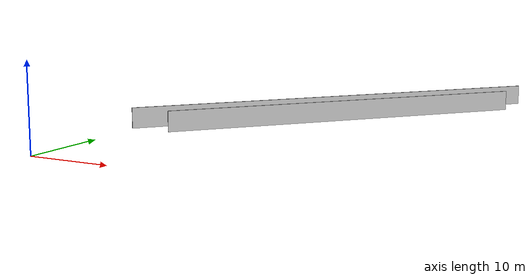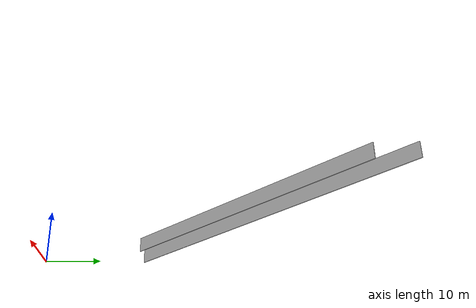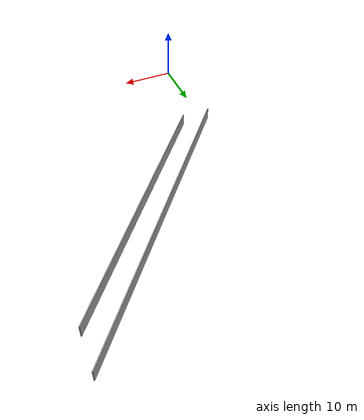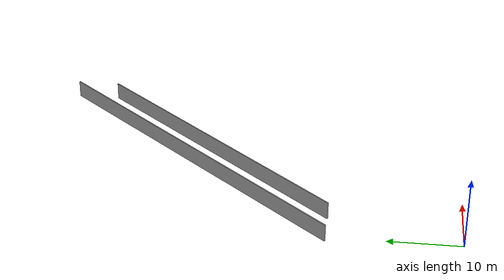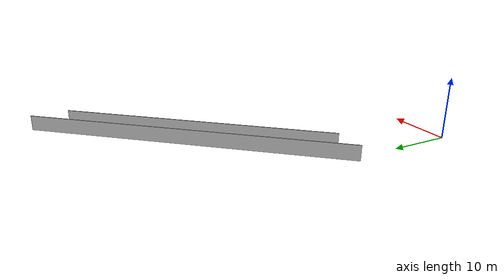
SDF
<?xml version="1.0" ?>
<sdf version="1.6">
  <model name="sps_1446">
    <pose frame="">0 0 0 0 -0 0</pose>
    <static>1</static>
    <self_collide>0</self_collide>
    <allow_auto_disable>0</allow_auto_disable>
    <link name="Wall228">
      <kinematic>0</kinematic>
      <gravity>1</gravity>
      <self_collide>0</self_collide>
      <collision name="collision">
        <geometry>
          <box>
            <size>46.2304 0.15 2.5</size>
          </box>
        </geometry>
        <pose frame="">0 0 0 0 -0 0</pose>
      </collision>
      <visual name="visual">
        <geometry>
          <box>
            <size>46.2304 0.15 2.5</size>
          </box>
        </geometry>
        <pose frame="">0 0 0 0 -0 0</pose>
        <cast_shadows>1</cast_shadows>
        <transparency>0.0</transparency>
      </visual>
      <pose frame="">19.3679 35.3933 1.25 0 0 -2.28275</pose>
    </link>
    <link name="Wall449">
      <kinematic>0</kinematic>
      <gravity>1</gravity>
      <self_collide>0</self_collide>
      <collision name="collision">
        <geometry>
          <box>
            <size>54.32 0.15 2.5</size>
          </box>
        </geometry>
        <pose frame="">0 0 0 0 -0 0</pose>
      </collision>
      <visual name="visual">
        <geometry>
          <box>
            <size>54.32 0.15 2.5</size>
          </box>
        </geometry>
        <pose frame="">0 0 0 0 -0 0</pose>
        <cast_shadows>1</cast_shadows>
        <transparency>0.0</transparency>
      </visual>
      <pose frame="">16.7256 38.4557 1.25 0 0 -2.28274</pose>
    </link>
  </model>
</sdf>
